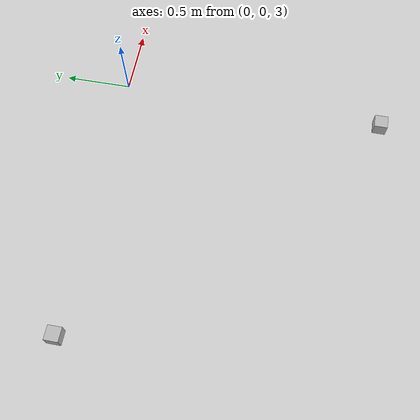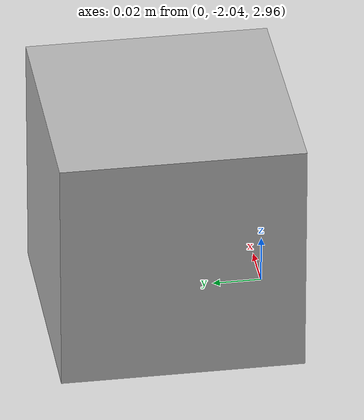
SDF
<?xml version="1.0" ?>
<sdf version="1.4">
  <model name="spectator_camera">
    <link name="link2">
      <pose>0.00 -2.00 3.0 0 0 0</pose>
      <inertial>
        <mass>0.1</mass>
        <inertia>
          <ixx>0.000166667</ixx>
          <iyy>0.000166667</iyy>
          <izz>0.000166667</izz>
        </inertia>
      </inertial>
      <collision name="collision">
        <geometry>
          <box>
            <size>0.1 0.1 0.1</size>
          </box>
        </geometry>
      </collision>
      <visual name="visual">
        <geometry>
          <box>
            <size>0.1 0.1 0.1</size>
          </box>
        </geometry>
      </visual>
      <sensor type="camera" name="camera2">
        <update_rate>30.0</update_rate>
        <camera name="head">
          <horizontal_fov>1.3962634</horizontal_fov>
          <image>
            <width>800</width>
            <height>800</height>
            <format>R8G8B8</format>
          </image>
          <clip>
            <near>0.02</near>
            <far>300</far>
          </clip>
          <noise>
            <type>gaussian</type>
            <!-- Noise is sampled independently per pixel on each frame.
                That pixel's noise value is added to each of its color
                channels, which at that point lie in the range [0,1]. -->
            <mean>0.0</mean>
            <stddev>0.007</stddev>
          </noise>
        </camera>
        <plugin name="camera_controller" filename="libgazebo_ros_camera.so">
          <alwaysOn>true</alwaysOn>
          <updateRate>0.0</updateRate>
          <cameraName>rrbot/camera2</cameraName>
          <imageTopicName>image_raw</imageTopicName>
          <cameraInfoTopicName>camera_info</cameraInfoTopicName>
          <frameName>camera_link</frameName>
          <hackBaseline>0.07</hackBaseline>
          <distortionK1>0.0</distortionK1>
          <distortionK2>0.0</distortionK2>
          <distortionK3>0.0</distortionK3>
          <distortionT1>0.0</distortionT1>
          <distortionT2>0.0</distortionT2>
        </plugin>
      </sensor>
    </link>
    <link name="link1">
      <pose>-2.00 0.00 3.0 0 0 0</pose>
      <inertial>
        <mass>0.1</mass>
        <inertia>
          <ixx>0.000166667</ixx>
          <iyy>0.000166667</iyy>
          <izz>0.000166667</izz>
        </inertia>
      </inertial>
      <collision name="collision">
        <geometry>
          <box>
            <size>0.1 0.1 0.1</size>
          </box>
        </geometry>
      </collision>
      <visual name="visual">
        <geometry>
          <box>
            <size>0.1 0.1 0.1</size>
          </box>
        </geometry>
      </visual>
      <sensor type="camera" name="camera1">
        <update_rate>30.0</update_rate>
        <camera name="head">
          <horizontal_fov>1.3962634</horizontal_fov>
          <image>
            <width>800</width>
            <height>800</height>
            <format>R8G8B8</format>
          </image>
          <clip>
            <near>0.02</near>
            <far>300</far>
          </clip>
          <noise>
            <type>gaussian</type>
            <!-- Noise is sampled independently per pixel on each frame.
                That pixel's noise value is added to each of its color
                channels, which at that point lie in the range [0,1]. -->
            <mean>0.0</mean>
            <stddev>0.007</stddev>
          </noise>
        </camera>
        <plugin name="camera_controller" filename="libgazebo_ros_camera.so">
          <alwaysOn>true</alwaysOn>
          <updateRate>0.0</updateRate>
          <cameraName>rrbot/camera1</cameraName>
          <imageTopicName>image_raw</imageTopicName>
          <cameraInfoTopicName>camera_info</cameraInfoTopicName>
          <frameName>camera_link</frameName>
          <hackBaseline>0.07</hackBaseline>
          <distortionK1>0.0</distortionK1>
          <distortionK2>0.0</distortionK2>
          <distortionK3>0.0</distortionK3>
          <distortionT1>0.0</distortionT1>
          <distortionT2>0.0</distortionT2>
        </plugin>
      </sensor>
    </link>
  </model>
</sdf>
